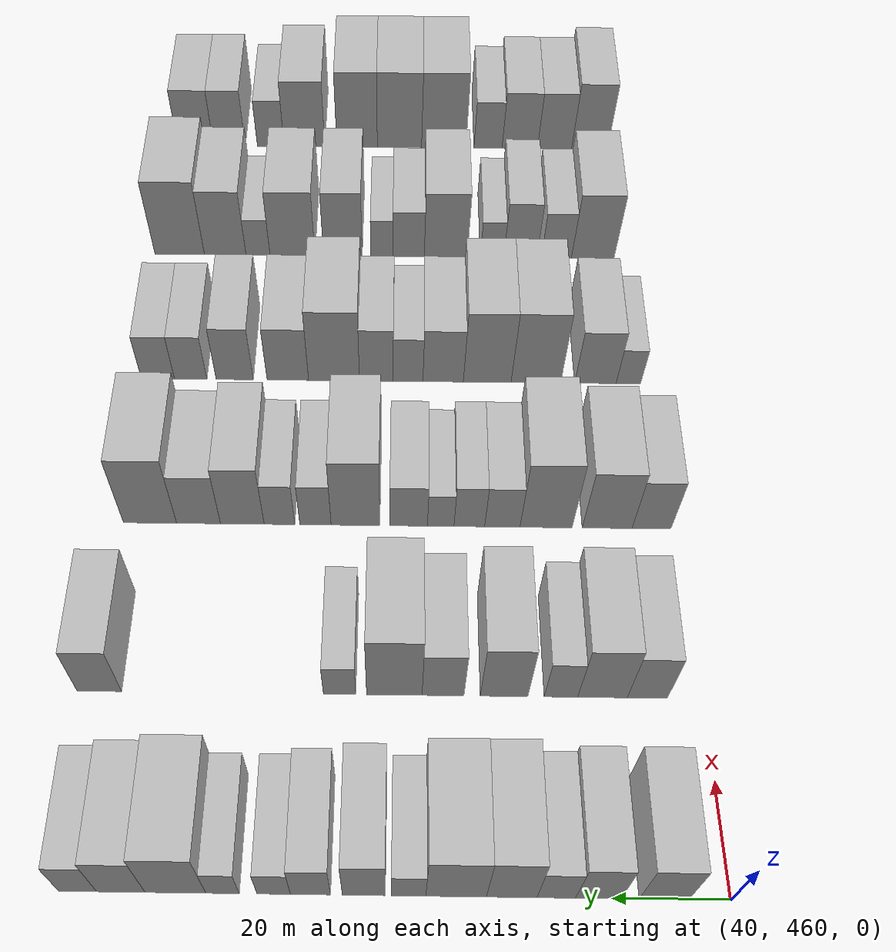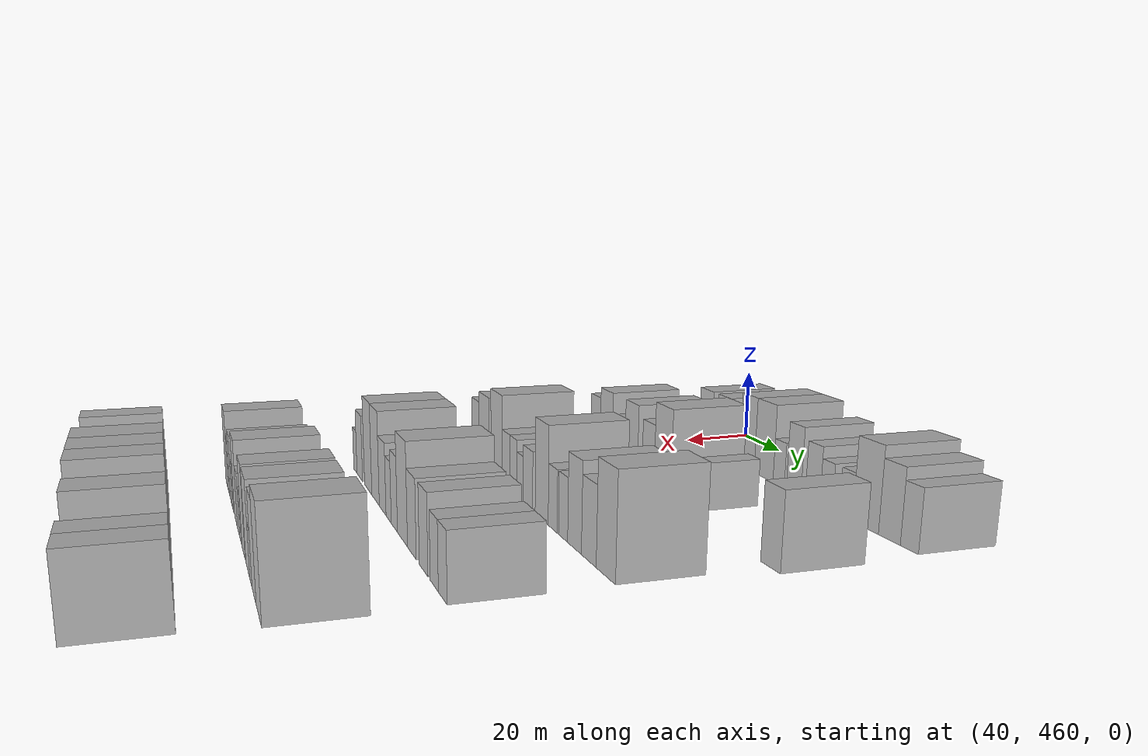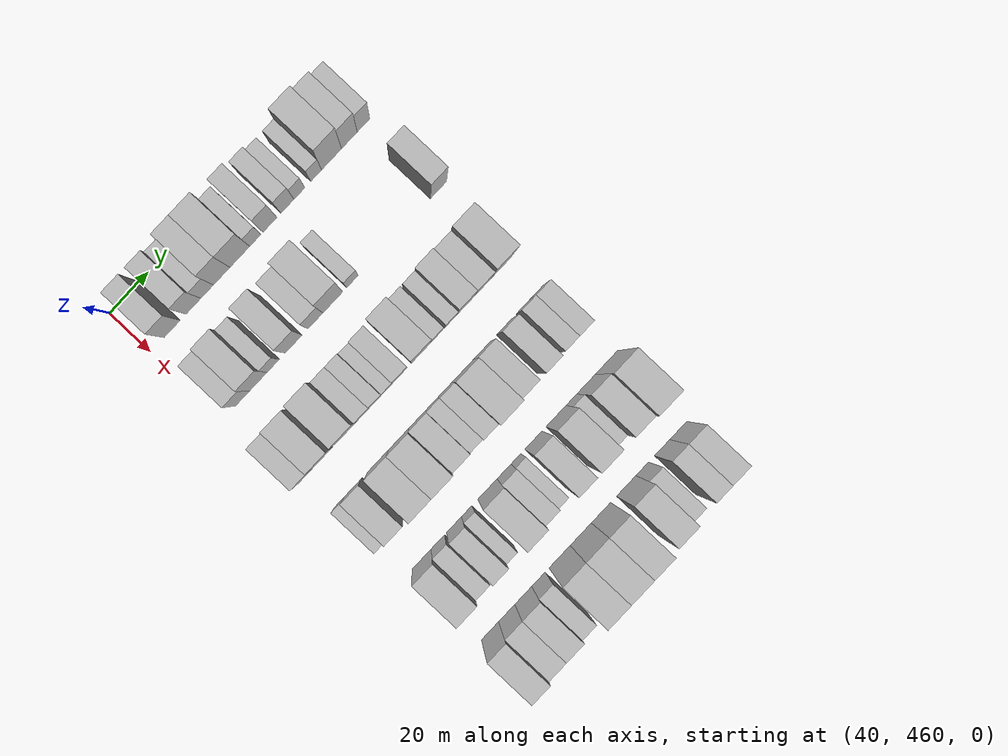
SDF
<sdf version="1.6">
 <world name="default">
  <model name="building_115">
   <static>1</static>
   <pose>50.0000 471.2399 0 0.000000 0.000000 0.000000</pose>
   <link name="link">
    <pose>0 0 9.00 0 0 0</pose>
    <collision name="collision"><geometry><box><size>20.0000 8.3644 18.0000</size></box></geometry></collision>
    <visual name="visual">
     <cast_shadows>0</cast_shadows>
     <geometry><box><size>20.0000 8.3644 18.0000</size></box></geometry>
     <material>
      <script>
       <uri>model://HANNAS_wall/materials/scripts</uri>
       <uri>model://HANNAS_wall/materials/textures</uri>
       <name>vrc/HANNAS_wall</name>
      </script>
     </material>
    </visual>
   </link>
  </model>
  <model name="building_116">
   <static>1</static>
   <pose>50.0000 482.2647 0 0.000000 0.000000 0.000000</pose>
   <link name="link">
    <pose>0 0 9.00 0 0 0</pose>
    <collision name="collision"><geometry><box><size>20.0000 7.6853 18.0000</size></box></geometry></collision>
    <visual name="visual">
     <cast_shadows>0</cast_shadows>
     <geometry><box><size>20.0000 7.6853 18.0000</size></box></geometry>
     <material>
      <script>
       <uri>model://HANNAS_wall/materials/scripts</uri>
       <uri>model://HANNAS_wall/materials/textures</uri>
       <name>vrc/HANNAS_wall</name>
      </script>
     </material>
    </visual>
   </link>
  </model>
  <model name="building_117">
   <static>1</static>
   <pose>50.0000 489.3541 0 0.000000 0.000000 0.000000</pose>
   <link name="link">
    <pose>0 0 7.50 0 0 0</pose>
    <collision name="collision"><geometry><box><size>20.0000 6.4935 15.0000</size></box></geometry></collision>
    <visual name="visual">
     <cast_shadows>0</cast_shadows>
     <geometry><box><size>20.0000 6.4935 15.0000</size></box></geometry>
     <material>
      <script>
       <uri>model://HANNAS_wall/materials/scripts</uri>
       <uri>model://HANNAS_wall/materials/textures</uri>
       <name>vrc/HANNAS_wall</name>
      </script>
     </material>
    </visual>
   </link>
  </model>
  <model name="building_118">
   <static>1</static>
   <pose>50.0000 496.8492 0 0.000000 0.000000 0.000000</pose>
   <link name="link">
    <pose>0 0 10.50 0 0 0</pose>
    <collision name="collision"><geometry><box><size>20.0000 8.4968 21.0000</size></box></geometry></collision>
    <visual name="visual">
     <cast_shadows>0</cast_shadows>
     <geometry><box><size>20.0000 8.4968 21.0000</size></box></geometry>
     <material>
      <script>
       <uri>model://HANNAS_wall/materials/scripts</uri>
       <uri>model://HANNAS_wall/materials/textures</uri>
       <name>vrc/HANNAS_wall</name>
      </script>
     </material>
    </visual>
   </link>
  </model>
  <model name="building_119">
   <static>1</static>
   <pose>50.0000 506.1960 0 0.000000 0.000000 0.000000</pose>
   <link name="link">
    <pose>0 0 10.50 0 0 0</pose>
    <collision name="collision"><geometry><box><size>20.0000 10.1967 21.0000</size></box></geometry></collision>
    <visual name="visual">
     <cast_shadows>0</cast_shadows>
     <geometry><box><size>20.0000 10.1967 21.0000</size></box></geometry>
     <material>
      <script>
       <uri>model://HANNAS_wall/materials/scripts</uri>
       <uri>model://HANNAS_wall/materials/textures</uri>
       <name>vrc/HANNAS_wall</name>
      </script>
     </material>
    </visual>
   </link>
  </model>
  <model name="building_120">
   <static>1</static>
   <pose>50.0000 514.2030 0 0.000000 0.000000 0.000000</pose>
   <link name="link">
    <pose>0 0 6.00 0 0 0</pose>
    <collision name="collision"><geometry><box><size>20.0000 5.8173 12.0000</size></box></geometry></collision>
    <visual name="visual">
     <cast_shadows>0</cast_shadows>
     <geometry><box><size>20.0000 5.8173 12.0000</size></box></geometry>
     <material>
      <script>
       <uri>model://HANNAS_wall/materials/scripts</uri>
       <uri>model://HANNAS_wall/materials/textures</uri>
       <name>vrc/HANNAS_wall</name>
      </script>
     </material>
    </visual>
   </link>
  </model>
  <model name="building_121">
   <static>1</static>
   <pose>50.0000 521.7240 0 0.000000 0.000000 0.000000</pose>
   <link name="link">
    <pose>0 0 9.00 0 0 0</pose>
    <collision name="collision"><geometry><box><size>20.0000 7.2247 18.0000</size></box></geometry></collision>
    <visual name="visual">
     <cast_shadows>0</cast_shadows>
     <geometry><box><size>20.0000 7.2247 18.0000</size></box></geometry>
     <material>
      <script>
       <uri>model://HANNAS_wall/materials/scripts</uri>
       <uri>model://HANNAS_wall/materials/textures</uri>
       <name>vrc/HANNAS_wall</name>
      </script>
     </material>
    </visual>
   </link>
  </model>
  <model name="building_122">
   <static>1</static>
   <pose>50.0000 530.7170 0 0.000000 0.000000 0.000000</pose>
   <link name="link">
    <pose>0 0 7.50 0 0 0</pose>
    <collision name="collision"><geometry><box><size>20.0000 6.7615 15.0000</size></box></geometry></collision>
    <visual name="visual">
     <cast_shadows>0</cast_shadows>
     <geometry><box><size>20.0000 6.7615 15.0000</size></box></geometry>
     <material>
      <script>
       <uri>model://HANNAS_wall/materials/scripts</uri>
       <uri>model://HANNAS_wall/materials/textures</uri>
       <name>vrc/HANNAS_wall</name>
      </script>
     </material>
    </visual>
   </link>
  </model>
  <model name="building_123">
   <static>1</static>
   <pose>50.0000 536.9125 0 0.000000 0.000000 0.000000</pose>
   <link name="link">
    <pose>0 0 6.00 0 0 0</pose>
    <collision name="collision"><geometry><box><size>20.0000 5.6294 12.0000</size></box></geometry></collision>
    <visual name="visual">
     <cast_shadows>0</cast_shadows>
     <geometry><box><size>20.0000 5.6294 12.0000</size></box></geometry>
     <material>
      <script>
       <uri>model://HANNAS_wall/materials/scripts</uri>
       <uri>model://HANNAS_wall/materials/textures</uri>
       <name>vrc/HANNAS_wall</name>
      </script>
     </material>
    </visual>
   </link>
  </model>
  <model name="building_124">
   <static>1</static>
   <pose>50.0000 545.5421 0 0.000000 0.000000 0.000000</pose>
   <link name="link">
    <pose>0 0 6.00 0 0 0</pose>
    <collision name="collision"><geometry><box><size>20.0000 5.6298 12.0000</size></box></geometry></collision>
    <visual name="visual">
     <cast_shadows>0</cast_shadows>
     <geometry><box><size>20.0000 5.6298 12.0000</size></box></geometry>
     <material>
      <script>
       <uri>model://HANNAS_wall/materials/scripts</uri>
       <uri>model://HANNAS_wall/materials/textures</uri>
       <name>vrc/HANNAS_wall</name>
      </script>
     </material>
    </visual>
   </link>
  </model>
  <model name="building_125">
   <static>1</static>
   <pose>50.0000 553.4794 0 0.000000 0.000000 0.000000</pose>
   <link name="link">
    <pose>0 0 10.50 0 0 0</pose>
    <collision name="collision"><geometry><box><size>20.0000 10.2449 21.0000</size></box></geometry></collision>
    <visual name="visual">
     <cast_shadows>0</cast_shadows>
     <geometry><box><size>20.0000 10.2449 21.0000</size></box></geometry>
     <material>
      <script>
       <uri>model://HANNAS_wall/materials/scripts</uri>
       <uri>model://HANNAS_wall/materials/textures</uri>
       <name>vrc/HANNAS_wall</name>
      </script>
     </material>
    </visual>
   </link>
  </model>
  <model name="building_126">
   <static>1</static>
   <pose>50.0000 562.6864 0 0.000000 0.000000 0.000000</pose>
   <link name="link">
    <pose>0 0 9.00 0 0 0</pose>
    <collision name="collision"><geometry><box><size>20.0000 8.1692 18.0000</size></box></geometry></collision>
    <visual name="visual">
     <cast_shadows>0</cast_shadows>
     <geometry><box><size>20.0000 8.1692 18.0000</size></box></geometry>
     <material>
      <script>
       <uri>model://HANNAS_wall/materials/scripts</uri>
       <uri>model://HANNAS_wall/materials/textures</uri>
       <name>vrc/HANNAS_wall</name>
      </script>
     </material>
    </visual>
   </link>
  </model>
  <model name="building_127">
   <static>1</static>
   <pose>50.0000 569.9899 0 0.000000 0.000000 0.000000</pose>
   <link name="link">
    <pose>0 0 7.50 0 0 0</pose>
    <collision name="collision"><geometry><box><size>20.0000 6.4378 15.0000</size></box></geometry></collision>
    <visual name="visual">
     <cast_shadows>0</cast_shadows>
     <geometry><box><size>20.0000 6.4378 15.0000</size></box></geometry>
     <material>
      <script>
       <uri>model://HANNAS_wall/materials/scripts</uri>
       <uri>model://HANNAS_wall/materials/textures</uri>
       <name>vrc/HANNAS_wall</name>
      </script>
     </material>
    </visual>
   </link>
  </model>
  <model name="building_246">
   <static>1</static>
   <pose>85.0000 470.4467 0 0.000000 0.000000 0.000000</pose>
   <link name="link">
    <pose>0 0 9.00 0 0 0</pose>
    <collision name="collision"><geometry><box><size>20.0000 7.3850 18.0000</size></box></geometry></collision>
    <visual name="visual">
     <cast_shadows>0</cast_shadows>
     <geometry><box><size>20.0000 7.3850 18.0000</size></box></geometry>
     <material>
      <script>
       <uri>model://HANNAS_wall/materials/scripts</uri>
       <uri>model://HANNAS_wall/materials/textures</uri>
       <name>vrc/HANNAS_wall</name>
      </script>
     </material>
    </visual>
   </link>
  </model>
  <model name="building_247">
   <static>1</static>
   <pose>85.0000 478.6959 0 0.000000 0.000000 0.000000</pose>
   <link name="link">
    <pose>0 0 10.50 0 0 0</pose>
    <collision name="collision"><geometry><box><size>20.0000 9.1134 21.0000</size></box></geometry></collision>
    <visual name="visual">
     <cast_shadows>0</cast_shadows>
     <geometry><box><size>20.0000 9.1134 21.0000</size></box></geometry>
     <material>
      <script>
       <uri>model://HANNAS_wall/materials/scripts</uri>
       <uri>model://HANNAS_wall/materials/textures</uri>
       <name>vrc/HANNAS_wall</name>
      </script>
     </material>
    </visual>
   </link>
  </model>
  <model name="building_248">
   <static>1</static>
   <pose>85.0000 486.3266 0 0.000000 0.000000 0.000000</pose>
   <link name="link">
    <pose>0 0 7.50 0 0 0</pose>
    <collision name="collision"><geometry><box><size>20.0000 6.1479 15.0000</size></box></geometry></collision>
    <visual name="visual">
     <cast_shadows>0</cast_shadows>
     <geometry><box><size>20.0000 6.1479 15.0000</size></box></geometry>
     <material>
      <script>
       <uri>model://HANNAS_wall/materials/scripts</uri>
       <uri>model://HANNAS_wall/materials/textures</uri>
       <name>vrc/HANNAS_wall</name>
      </script>
     </material>
    </visual>
   </link>
  </model>
  <model name="building_249">
   <static>1</static>
   <pose>85.0000 496.7786 0 0.000000 0.000000 0.000000</pose>
   <link name="link">
    <pose>0 0 10.50 0 0 0</pose>
    <collision name="collision"><geometry><box><size>20.0000 8.7560 21.0000</size></box></geometry></collision>
    <visual name="visual">
     <cast_shadows>0</cast_shadows>
     <geometry><box><size>20.0000 8.7560 21.0000</size></box></geometry>
     <material>
      <script>
       <uri>model://HANNAS_wall/materials/scripts</uri>
       <uri>model://HANNAS_wall/materials/textures</uri>
       <name>vrc/HANNAS_wall</name>
      </script>
     </material>
    </visual>
   </link>
  </model>
  <model name="building_250">
   <static>1</static>
   <pose>85.0000 508.0166 0 0.000000 0.000000 0.000000</pose>
   <link name="link">
    <pose>0 0 9.00 0 0 0</pose>
    <collision name="collision"><geometry><box><size>20.0000 7.7201 18.0000</size></box></geometry></collision>
    <visual name="visual">
     <cast_shadows>0</cast_shadows>
     <geometry><box><size>20.0000 7.7201 18.0000</size></box></geometry>
     <material>
      <script>
       <uri>model://HANNAS_wall/materials/scripts</uri>
       <uri>model://HANNAS_wall/materials/textures</uri>
       <name>vrc/HANNAS_wall</name>
      </script>
     </material>
    </visual>
   </link>
  </model>
  <model name="building_251">
   <static>1</static>
   <pose>85.0000 516.9718 0 0.000000 0.000000 0.000000</pose>
   <link name="link">
    <pose>0 0 12.00 0 0 0</pose>
    <collision name="collision"><geometry><box><size>20.0000 10.1903 24.0000</size></box></geometry></collision>
    <visual name="visual">
     <cast_shadows>0</cast_shadows>
     <geometry><box><size>20.0000 10.1903 24.0000</size></box></geometry>
     <material>
      <script>
       <uri>model://HANNAS_wall/materials/scripts</uri>
       <uri>model://HANNAS_wall/materials/textures</uri>
       <name>vrc/HANNAS_wall</name>
      </script>
     </material>
    </visual>
   </link>
  </model>
  <model name="building_252">
   <static>1</static>
   <pose>85.0000 527.0466 0 0.000000 0.000000 0.000000</pose>
   <link name="link">
    <pose>0 0 6.00 0 0 0</pose>
    <collision name="collision"><geometry><box><size>20.0000 5.9594 12.0000</size></box></geometry></collision>
    <visual name="visual">
     <cast_shadows>0</cast_shadows>
     <geometry><box><size>20.0000 5.9594 12.0000</size></box></geometry>
     <material>
      <script>
       <uri>model://HANNAS_wall/materials/scripts</uri>
       <uri>model://HANNAS_wall/materials/textures</uri>
       <name>vrc/HANNAS_wall</name>
      </script>
     </material>
    </visual>
   </link>
  </model>
  <model name="building_253">
   <static>1</static>
   <pose>85.0000 571.3660 0 0.000000 0.000000 0.000000</pose>
   <link name="link">
    <pose>0 0 9.00 0 0 0</pose>
    <collision name="collision"><geometry><box><size>20.0000 8.2265 18.0000</size></box></geometry></collision>
    <visual name="visual">
     <cast_shadows>0</cast_shadows>
     <geometry><box><size>20.0000 8.2265 18.0000</size></box></geometry>
     <material>
      <script>
       <uri>model://HANNAS_wall/materials/scripts</uri>
       <uri>model://HANNAS_wall/materials/textures</uri>
       <name>vrc/HANNAS_wall</name>
      </script>
     </material>
    </visual>
   </link>
  </model>
  <model name="building_368">
   <static>1</static>
   <pose>120.0000 466.0222 0 0.000000 0.000000 0.000000</pose>
   <link name="link">
    <pose>0 0 9.00 0 0 0</pose>
    <collision name="collision"><geometry><box><size>20.0000 7.7712 18.0000</size></box></geometry></collision>
    <visual name="visual">
     <cast_shadows>0</cast_shadows>
     <geometry><box><size>20.0000 7.7712 18.0000</size></box></geometry>
     <material>
      <script>
       <uri>model://HANNAS_wall/materials/scripts</uri>
       <uri>model://HANNAS_wall/materials/textures</uri>
       <name>vrc/HANNAS_wall</name>
      </script>
     </material>
    </visual>
   </link>
  </model>
  <model name="building_369">
   <static>1</static>
   <pose>120.0000 474.8687 0 0.000000 0.000000 0.000000</pose>
   <link name="link">
    <pose>0 0 10.50 0 0 0</pose>
    <collision name="collision"><geometry><box><size>20.0000 9.9218 21.0000</size></box></geometry></collision>
    <visual name="visual">
     <cast_shadows>0</cast_shadows>
     <geometry><box><size>20.0000 9.9218 21.0000</size></box></geometry>
     <material>
      <script>
       <uri>model://HANNAS_wall/materials/scripts</uri>
       <uri>model://HANNAS_wall/materials/textures</uri>
       <name>vrc/HANNAS_wall</name>
      </script>
     </material>
    </visual>
   </link>
  </model>
  <model name="building_370">
   <static>1</static>
   <pose>120.0000 487.0392 0 0.000000 0.000000 0.000000</pose>
   <link name="link">
    <pose>0 0 12.00 0 0 0</pose>
    <collision name="collision"><geometry><box><size>20.0000 10.4192 24.0000</size></box></geometry></collision>
    <visual name="visual">
     <cast_shadows>0</cast_shadows>
     <geometry><box><size>20.0000 10.4192 24.0000</size></box></geometry>
     <material>
      <script>
       <uri>model://HANNAS_wall/materials/scripts</uri>
       <uri>model://HANNAS_wall/materials/textures</uri>
       <name>vrc/HANNAS_wall</name>
      </script>
     </material>
    </visual>
   </link>
  </model>
  <model name="building_371">
   <static>1</static>
   <pose>120.0000 495.7792 0 0.000000 0.000000 0.000000</pose>
   <link name="link">
    <pose>0 0 7.50 0 0 0</pose>
    <collision name="collision"><geometry><box><size>20.0000 7.0607 15.0000</size></box></geometry></collision>
    <visual name="visual">
     <cast_shadows>0</cast_shadows>
     <geometry><box><size>20.0000 7.0607 15.0000</size></box></geometry>
     <material>
      <script>
       <uri>model://HANNAS_wall/materials/scripts</uri>
       <uri>model://HANNAS_wall/materials/textures</uri>
       <name>vrc/HANNAS_wall</name>
      </script>
     </material>
    </visual>
   </link>
  </model>
  <model name="building_372">
   <static>1</static>
   <pose>120.0000 502.3726 0 0.000000 0.000000 0.000000</pose>
   <link name="link">
    <pose>0 0 7.50 0 0 0</pose>
    <collision name="collision"><geometry><box><size>20.0000 6.1261 15.0000</size></box></geometry></collision>
    <visual name="visual">
     <cast_shadows>0</cast_shadows>
     <geometry><box><size>20.0000 6.1261 15.0000</size></box></geometry>
     <material>
      <script>
       <uri>model://HANNAS_wall/materials/scripts</uri>
       <uri>model://HANNAS_wall/materials/textures</uri>
       <name>vrc/HANNAS_wall</name>
      </script>
     </material>
    </visual>
   </link>
  </model>
  <model name="building_373">
   <static>1</static>
   <pose>120.0000 508.0924 0 0.000000 0.000000 0.000000</pose>
   <link name="link">
    <pose>0 0 6.00 0 0 0</pose>
    <collision name="collision"><geometry><box><size>20.0000 5.3136 12.0000</size></box></geometry></collision>
    <visual name="visual">
     <cast_shadows>0</cast_shadows>
     <geometry><box><size>20.0000 5.3136 12.0000</size></box></geometry>
     <material>
      <script>
       <uri>model://HANNAS_wall/materials/scripts</uri>
       <uri>model://HANNAS_wall/materials/textures</uri>
       <name>vrc/HANNAS_wall</name>
      </script>
     </material>
    </visual>
   </link>
  </model>
  <model name="building_374">
   <static>1</static>
   <pose>120.0000 514.4983 0 0.000000 0.000000 0.000000</pose>
   <link name="link">
    <pose>0 0 7.50 0 0 0</pose>
    <collision name="collision"><geometry><box><size>20.0000 7.4981 15.0000</size></box></geometry></collision>
    <visual name="visual">
     <cast_shadows>0</cast_shadows>
     <geometry><box><size>20.0000 7.4981 15.0000</size></box></geometry>
     <material>
      <script>
       <uri>model://HANNAS_wall/materials/scripts</uri>
       <uri>model://HANNAS_wall/materials/textures</uri>
       <name>vrc/HANNAS_wall</name>
      </script>
     </material>
    </visual>
   </link>
  </model>
  <model name="building_375">
   <static>1</static>
   <pose>120.0000 525.1115 0 0.000000 0.000000 0.000000</pose>
   <link name="link">
    <pose>0 0 12.00 0 0 0</pose>
    <collision name="collision"><geometry><box><size>20.0000 9.7284 24.0000</size></box></geometry></collision>
    <visual name="visual">
     <cast_shadows>0</cast_shadows>
     <geometry><box><size>20.0000 9.7284 24.0000</size></box></geometry>
     <material>
      <script>
       <uri>model://HANNAS_wall/materials/scripts</uri>
       <uri>model://HANNAS_wall/materials/textures</uri>
       <name>vrc/HANNAS_wall</name>
      </script>
     </material>
    </visual>
   </link>
  </model>
  <model name="building_376">
   <static>1</static>
   <pose>120.0000 533.1024 0 0.000000 0.000000 0.000000</pose>
   <link name="link">
    <pose>0 0 7.50 0 0 0</pose>
    <collision name="collision"><geometry><box><size>20.0000 6.2534 15.0000</size></box></geometry></collision>
    <visual name="visual">
     <cast_shadows>0</cast_shadows>
     <geometry><box><size>20.0000 6.2534 15.0000</size></box></geometry>
     <material>
      <script>
       <uri>model://HANNAS_wall/materials/scripts</uri>
       <uri>model://HANNAS_wall/materials/textures</uri>
       <name>vrc/HANNAS_wall</name>
      </script>
     </material>
    </visual>
   </link>
  </model>
  <model name="building_377">
   <static>1</static>
   <pose>120.0000 540.3004 0 0.000000 0.000000 0.000000</pose>
   <link name="link">
    <pose>0 0 7.50 0 0 0</pose>
    <collision name="collision"><geometry><box><size>20.0000 6.1425 15.0000</size></box></geometry></collision>
    <visual name="visual">
     <cast_shadows>0</cast_shadows>
     <geometry><box><size>20.0000 6.1425 15.0000</size></box></geometry>
     <material>
      <script>
       <uri>model://HANNAS_wall/materials/scripts</uri>
       <uri>model://HANNAS_wall/materials/textures</uri>
       <name>vrc/HANNAS_wall</name>
      </script>
     </material>
    </visual>
   </link>
  </model>
  <model name="building_378">
   <static>1</static>
   <pose>120.0000 547.7375 0 0.000000 0.000000 0.000000</pose>
   <link name="link">
    <pose>0 0 10.50 0 0 0</pose>
    <collision name="collision"><geometry><box><size>20.0000 8.7317 21.0000</size></box></geometry></collision>
    <visual name="visual">
     <cast_shadows>0</cast_shadows>
     <geometry><box><size>20.0000 8.7317 21.0000</size></box></geometry>
     <material>
      <script>
       <uri>model://HANNAS_wall/materials/scripts</uri>
       <uri>model://HANNAS_wall/materials/textures</uri>
       <name>vrc/HANNAS_wall</name>
      </script>
     </material>
    </visual>
   </link>
  </model>
  <model name="building_379">
   <static>1</static>
   <pose>120.0000 556.5003 0 0.000000 0.000000 0.000000</pose>
   <link name="link">
    <pose>0 0 9.00 0 0 0</pose>
    <collision name="collision"><geometry><box><size>20.0000 8.7939 18.0000</size></box></geometry></collision>
    <visual name="visual">
     <cast_shadows>0</cast_shadows>
     <geometry><box><size>20.0000 8.7939 18.0000</size></box></geometry>
     <material>
      <script>
       <uri>model://HANNAS_wall/materials/scripts</uri>
       <uri>model://HANNAS_wall/materials/textures</uri>
       <name>vrc/HANNAS_wall</name>
      </script>
     </material>
    </visual>
   </link>
  </model>
  <model name="building_380">
   <static>1</static>
   <pose>120.0000 566.2246 0 0.000000 0.000000 0.000000</pose>
   <link name="link">
    <pose>0 0 12.00 0 0 0</pose>
    <collision name="collision"><geometry><box><size>20.0000 10.6547 24.0000</size></box></geometry></collision>
    <visual name="visual">
     <cast_shadows>0</cast_shadows>
     <geometry><box><size>20.0000 10.6547 24.0000</size></box></geometry>
     <material>
      <script>
       <uri>model://HANNAS_wall/materials/scripts</uri>
       <uri>model://HANNAS_wall/materials/textures</uri>
       <name>vrc/HANNAS_wall</name>
      </script>
     </material>
    </visual>
   </link>
  </model>
  <model name="building_500">
   <static>1</static>
   <pose>155.0000 467.3341 0 0.000000 0.000000 0.000000</pose>
   <link name="link">
    <pose>0 0 6.00 0 0 0</pose>
    <collision name="collision"><geometry><box><size>20.0000 5.2841 12.0000</size></box></geometry></collision>
    <visual name="visual">
     <cast_shadows>0</cast_shadows>
     <geometry><box><size>20.0000 5.2841 12.0000</size></box></geometry>
     <material>
      <script>
       <uri>model://HANNAS_wall/materials/scripts</uri>
       <uri>model://HANNAS_wall/materials/textures</uri>
       <name>vrc/HANNAS_wall</name>
      </script>
     </material>
    </visual>
   </link>
  </model>
  <model name="building_501">
   <static>1</static>
   <pose>155.0000 474.4321 0 0.000000 0.000000 0.000000</pose>
   <link name="link">
    <pose>0 0 9.00 0 0 0</pose>
    <collision name="collision"><geometry><box><size>20.0000 8.9120 18.0000</size></box></geometry></collision>
    <visual name="visual">
     <cast_shadows>0</cast_shadows>
     <geometry><box><size>20.0000 8.9120 18.0000</size></box></geometry>
     <material>
      <script>
       <uri>model://HANNAS_wall/materials/scripts</uri>
       <uri>model://HANNAS_wall/materials/textures</uri>
       <name>vrc/HANNAS_wall</name>
      </script>
     </material>
    </visual>
   </link>
  </model>
  <model name="building_502">
   <static>1</static>
   <pose>155.0000 487.2293 0 0.000000 0.000000 0.000000</pose>
   <link name="link">
    <pose>0 0 12.00 0 0 0</pose>
    <collision name="collision"><geometry><box><size>20.0000 10.6824 24.0000</size></box></geometry></collision>
    <visual name="visual">
     <cast_shadows>0</cast_shadows>
     <geometry><box><size>20.0000 10.6824 24.0000</size></box></geometry>
     <material>
      <script>
       <uri>model://HANNAS_wall/materials/scripts</uri>
       <uri>model://HANNAS_wall/materials/textures</uri>
       <name>vrc/HANNAS_wall</name>
      </script>
     </material>
    </visual>
   </link>
  </model>
  <model name="building_503">
   <static>1</static>
   <pose>155.0000 497.7131 0 0.000000 0.000000 0.000000</pose>
   <link name="link">
    <pose>0 0 12.00 0 0 0</pose>
    <collision name="collision"><geometry><box><size>20.0000 10.2853 24.0000</size></box></geometry></collision>
    <visual name="visual">
     <cast_shadows>0</cast_shadows>
     <geometry><box><size>20.0000 10.2853 24.0000</size></box></geometry>
     <material>
      <script>
       <uri>model://HANNAS_wall/materials/scripts</uri>
       <uri>model://HANNAS_wall/materials/textures</uri>
       <name>vrc/HANNAS_wall</name>
      </script>
     </material>
    </visual>
   </link>
  </model>
  <model name="building_504">
   <static>1</static>
   <pose>155.0000 507.2108 0 0.000000 0.000000 0.000000</pose>
   <link name="link">
    <pose>0 0 9.00 0 0 0</pose>
    <collision name="collision"><geometry><box><size>20.0000 8.7100 18.0000</size></box></geometry></collision>
    <visual name="visual">
     <cast_shadows>0</cast_shadows>
     <geometry><box><size>20.0000 8.7100 18.0000</size></box></geometry>
     <material>
      <script>
       <uri>model://HANNAS_wall/materials/scripts</uri>
       <uri>model://HANNAS_wall/materials/textures</uri>
       <name>vrc/HANNAS_wall</name>
      </script>
     </material>
    </visual>
   </link>
  </model>
  <model name="building_505">
   <static>1</static>
   <pose>155.0000 514.7714 0 0.000000 0.000000 0.000000</pose>
   <link name="link">
    <pose>0 0 7.50 0 0 0</pose>
    <collision name="collision"><geometry><box><size>20.0000 6.4112 15.0000</size></box></geometry></collision>
    <visual name="visual">
     <cast_shadows>0</cast_shadows>
     <geometry><box><size>20.0000 6.4112 15.0000</size></box></geometry>
     <material>
      <script>
       <uri>model://HANNAS_wall/materials/scripts</uri>
       <uri>model://HANNAS_wall/materials/textures</uri>
       <name>vrc/HANNAS_wall</name>
      </script>
     </material>
    </visual>
   </link>
  </model>
  <model name="building_506">
   <static>1</static>
   <pose>155.0000 521.5978 0 0.000000 0.000000 0.000000</pose>
   <link name="link">
    <pose>0 0 9.00 0 0 0</pose>
    <collision name="collision"><geometry><box><size>20.0000 7.2416 18.0000</size></box></geometry></collision>
    <visual name="visual">
     <cast_shadows>0</cast_shadows>
     <geometry><box><size>20.0000 7.2416 18.0000</size></box></geometry>
     <material>
      <script>
       <uri>model://HANNAS_wall/materials/scripts</uri>
       <uri>model://HANNAS_wall/materials/textures</uri>
       <name>vrc/HANNAS_wall</name>
      </script>
     </material>
    </visual>
   </link>
  </model>
  <model name="building_507">
   <static>1</static>
   <pose>155.0000 530.7173 0 0.000000 0.000000 0.000000</pose>
   <link name="link">
    <pose>0 0 12.00 0 0 0</pose>
    <collision name="collision"><geometry><box><size>20.0000 10.9973 24.0000</size></box></geometry></collision>
    <visual name="visual">
     <cast_shadows>0</cast_shadows>
     <geometry><box><size>20.0000 10.9973 24.0000</size></box></geometry>
     <material>
      <script>
       <uri>model://HANNAS_wall/materials/scripts</uri>
       <uri>model://HANNAS_wall/materials/textures</uri>
       <name>vrc/HANNAS_wall</name>
      </script>
     </material>
    </visual>
   </link>
  </model>
  <model name="building_508">
   <static>1</static>
   <pose>155.0000 540.6786 0 0.000000 0.000000 0.000000</pose>
   <link name="link">
    <pose>0 0 9.00 0 0 0</pose>
    <collision name="collision"><geometry><box><size>20.0000 8.9253 18.0000</size></box></geometry></collision>
    <visual name="visual">
     <cast_shadows>0</cast_shadows>
     <geometry><box><size>20.0000 8.9253 18.0000</size></box></geometry>
     <material>
      <script>
       <uri>model://HANNAS_wall/materials/scripts</uri>
       <uri>model://HANNAS_wall/materials/textures</uri>
       <name>vrc/HANNAS_wall</name>
      </script>
     </material>
    </visual>
   </link>
  </model>
  <model name="building_509">
   <static>1</static>
   <pose>155.0000 552.1531 0 0.000000 0.000000 0.000000</pose>
   <link name="link">
    <pose>0 0 9.00 0 0 0</pose>
    <collision name="collision"><geometry><box><size>20.0000 8.0239 18.0000</size></box></geometry></collision>
    <visual name="visual">
     <cast_shadows>0</cast_shadows>
     <geometry><box><size>20.0000 8.0239 18.0000</size></box></geometry>
     <material>
      <script>
       <uri>model://HANNAS_wall/materials/scripts</uri>
       <uri>model://HANNAS_wall/materials/textures</uri>
       <name>vrc/HANNAS_wall</name>
      </script>
     </material>
    </visual>
   </link>
  </model>
  <model name="building_510">
   <static>1</static>
   <pose>155.0000 561.6703 0 0.000000 0.000000 0.000000</pose>
   <link name="link">
    <pose>0 0 7.50 0 0 0</pose>
    <collision name="collision"><geometry><box><size>20.0000 7.0104 15.0000</size></box></geometry></collision>
    <visual name="visual">
     <cast_shadows>0</cast_shadows>
     <geometry><box><size>20.0000 7.0104 15.0000</size></box></geometry>
     <material>
      <script>
       <uri>model://HANNAS_wall/materials/scripts</uri>
       <uri>model://HANNAS_wall/materials/textures</uri>
       <name>vrc/HANNAS_wall</name>
      </script>
     </material>
    </visual>
   </link>
  </model>
  <model name="building_511">
   <static>1</static>
   <pose>155.0000 568.7543 0 0.000000 0.000000 0.000000</pose>
   <link name="link">
    <pose>0 0 7.50 0 0 0</pose>
    <collision name="collision"><geometry><box><size>20.0000 7.1576 15.0000</size></box></geometry></collision>
    <visual name="visual">
     <cast_shadows>0</cast_shadows>
     <geometry><box><size>20.0000 7.1576 15.0000</size></box></geometry>
     <material>
      <script>
       <uri>model://HANNAS_wall/materials/scripts</uri>
       <uri>model://HANNAS_wall/materials/textures</uri>
       <name>vrc/HANNAS_wall</name>
      </script>
     </material>
    </visual>
   </link>
  </model>
  <model name="building_624">
   <static>1</static>
   <pose>190.0000 472.2574 0 0.000000 0.000000 0.000000</pose>
   <link name="link">
    <pose>0 0 10.50 0 0 0</pose>
    <collision name="collision"><geometry><box><size>20.0000 9.8395 21.0000</size></box></geometry></collision>
    <visual name="visual">
     <cast_shadows>0</cast_shadows>
     <geometry><box><size>20.0000 9.8395 21.0000</size></box></geometry>
     <material>
      <script>
       <uri>model://HANNAS_wall/materials/scripts</uri>
       <uri>model://HANNAS_wall/materials/textures</uri>
       <name>vrc/HANNAS_wall</name>
      </script>
     </material>
    </visual>
   </link>
  </model>
  <model name="building_625">
   <static>1</static>
   <pose>190.0000 480.6486 0 0.000000 0.000000 0.000000</pose>
   <link name="link">
    <pose>0 0 7.50 0 0 0</pose>
    <collision name="collision"><geometry><box><size>20.0000 6.9428 15.0000</size></box></geometry></collision>
    <visual name="visual">
     <cast_shadows>0</cast_shadows>
     <geometry><box><size>20.0000 6.9428 15.0000</size></box></geometry>
     <material>
      <script>
       <uri>model://HANNAS_wall/materials/scripts</uri>
       <uri>model://HANNAS_wall/materials/textures</uri>
       <name>vrc/HANNAS_wall</name>
      </script>
     </material>
    </visual>
   </link>
  </model>
  <model name="building_626">
   <static>1</static>
   <pose>190.0000 488.9554 0 0.000000 0.000000 0.000000</pose>
   <link name="link">
    <pose>0 0 9.00 0 0 0</pose>
    <collision name="collision"><geometry><box><size>20.0000 7.6709 18.0000</size></box></geometry></collision>
    <visual name="visual">
     <cast_shadows>0</cast_shadows>
     <geometry><box><size>20.0000 7.6709 18.0000</size></box></geometry>
     <material>
      <script>
       <uri>model://HANNAS_wall/materials/scripts</uri>
       <uri>model://HANNAS_wall/materials/textures</uri>
       <name>vrc/HANNAS_wall</name>
      </script>
     </material>
    </visual>
   </link>
  </model>
  <model name="building_627">
   <static>1</static>
   <pose>190.0000 495.5117 0 0.000000 0.000000 0.000000</pose>
   <link name="link">
    <pose>0 0 6.00 0 0 0</pose>
    <collision name="collision"><geometry><box><size>20.0000 5.4417 12.0000</size></box></geometry></collision>
    <visual name="visual">
     <cast_shadows>0</cast_shadows>
     <geometry><box><size>20.0000 5.4417 12.0000</size></box></geometry>
     <material>
      <script>
       <uri>model://HANNAS_wall/materials/scripts</uri>
       <uri>model://HANNAS_wall/materials/textures</uri>
       <name>vrc/HANNAS_wall</name>
      </script>
     </material>
    </visual>
   </link>
  </model>
  <model name="building_628">
   <static>1</static>
   <pose>190.0000 506.2098 0 0.000000 0.000000 0.000000</pose>
   <link name="link">
    <pose>0 0 10.50 0 0 0</pose>
    <collision name="collision"><geometry><box><size>20.0000 9.9545 21.0000</size></box></geometry></collision>
    <visual name="visual">
     <cast_shadows>0</cast_shadows>
     <geometry><box><size>20.0000 9.9545 21.0000</size></box></geometry>
     <material>
      <script>
       <uri>model://HANNAS_wall/materials/scripts</uri>
       <uri>model://HANNAS_wall/materials/textures</uri>
       <name>vrc/HANNAS_wall</name>
      </script>
     </material>
    </visual>
   </link>
  </model>
  <model name="building_629">
   <static>1</static>
   <pose>190.0000 514.8160 0 0.000000 0.000000 0.000000</pose>
   <link name="link">
    <pose>0 0 7.50 0 0 0</pose>
    <collision name="collision"><geometry><box><size>20.0000 7.2579 15.0000</size></box></geometry></collision>
    <visual name="visual">
     <cast_shadows>0</cast_shadows>
     <geometry><box><size>20.0000 7.2579 15.0000</size></box></geometry>
     <material>
      <script>
       <uri>model://HANNAS_wall/materials/scripts</uri>
       <uri>model://HANNAS_wall/materials/textures</uri>
       <name>vrc/HANNAS_wall</name>
      </script>
     </material>
    </visual>
   </link>
  </model>
  <model name="building_630">
   <static>1</static>
   <pose>190.0000 520.9857 0 0.000000 0.000000 0.000000</pose>
   <link name="link">
    <pose>0 0 6.00 0 0 0</pose>
    <collision name="collision"><geometry><box><size>20.0000 5.0815 12.0000</size></box></geometry></collision>
    <visual name="visual">
     <cast_shadows>0</cast_shadows>
     <geometry><box><size>20.0000 5.0815 12.0000</size></box></geometry>
     <material>
      <script>
       <uri>model://HANNAS_wall/materials/scripts</uri>
       <uri>model://HANNAS_wall/materials/textures</uri>
       <name>vrc/HANNAS_wall</name>
      </script>
     </material>
    </visual>
   </link>
  </model>
  <model name="building_631">
   <static>1</static>
   <pose>190.0000 529.9929 0 0.000000 0.000000 0.000000</pose>
   <link name="link">
    <pose>0 0 10.50 0 0 0</pose>
    <collision name="collision"><geometry><box><size>20.0000 8.9330 21.0000</size></box></geometry></collision>
    <visual name="visual">
     <cast_shadows>0</cast_shadows>
     <geometry><box><size>20.0000 8.9330 21.0000</size></box></geometry>
     <material>
      <script>
       <uri>model://HANNAS_wall/materials/scripts</uri>
       <uri>model://HANNAS_wall/materials/textures</uri>
       <name>vrc/HANNAS_wall</name>
      </script>
     </material>
    </visual>
   </link>
  </model>
  <model name="building_632">
   <static>1</static>
   <pose>190.0000 541.6651 0 0.000000 0.000000 0.000000</pose>
   <link name="link">
    <pose>0 0 10.50 0 0 0</pose>
    <collision name="collision"><geometry><box><size>20.0000 10.4113 21.0000</size></box></geometry></collision>
    <visual name="visual">
     <cast_shadows>0</cast_shadows>
     <geometry><box><size>20.0000 10.4113 21.0000</size></box></geometry>
     <material>
      <script>
       <uri>model://HANNAS_wall/materials/scripts</uri>
       <uri>model://HANNAS_wall/materials/textures</uri>
       <name>vrc/HANNAS_wall</name>
      </script>
     </material>
    </visual>
   </link>
  </model>
  <model name="building_633">
   <static>1</static>
   <pose>190.0000 549.6591 0 0.000000 0.000000 0.000000</pose>
   <link name="link">
    <pose>0 0 6.00 0 0 0</pose>
    <collision name="collision"><geometry><box><size>20.0000 5.5768 12.0000</size></box></geometry></collision>
    <visual name="visual">
     <cast_shadows>0</cast_shadows>
     <geometry><box><size>20.0000 5.5768 12.0000</size></box></geometry>
     <material>
      <script>
       <uri>model://HANNAS_wall/materials/scripts</uri>
       <uri>model://HANNAS_wall/materials/textures</uri>
       <name>vrc/HANNAS_wall</name>
      </script>
     </material>
    </visual>
   </link>
  </model>
  <model name="building_634">
   <static>1</static>
   <pose>190.0000 557.2613 0 0.000000 0.000000 0.000000</pose>
   <link name="link">
    <pose>0 0 10.50 0 0 0</pose>
    <collision name="collision"><geometry><box><size>20.0000 9.6276 21.0000</size></box></geometry></collision>
    <visual name="visual">
     <cast_shadows>0</cast_shadows>
     <geometry><box><size>20.0000 9.6276 21.0000</size></box></geometry>
     <material>
      <script>
       <uri>model://HANNAS_wall/materials/scripts</uri>
       <uri>model://HANNAS_wall/materials/textures</uri>
       <name>vrc/HANNAS_wall</name>
      </script>
     </material>
    </visual>
   </link>
  </model>
  <model name="building_635">
   <static>1</static>
   <pose>190.0000 567.8020 0 0.000000 0.000000 0.000000</pose>
   <link name="link">
    <pose>0 0 12.00 0 0 0</pose>
    <collision name="collision"><geometry><box><size>20.0000 11.4537 24.0000</size></box></geometry></collision>
    <visual name="visual">
     <cast_shadows>0</cast_shadows>
     <geometry><box><size>20.0000 11.4537 24.0000</size></box></geometry>
     <material>
      <script>
       <uri>model://HANNAS_wall/materials/scripts</uri>
       <uri>model://HANNAS_wall/materials/textures</uri>
       <name>vrc/HANNAS_wall</name>
      </script>
     </material>
    </visual>
   </link>
  </model>
  <model name="building_752">
   <static>1</static>
   <pose>225.0000 470.3077 0 0.000000 0.000000 0.000000</pose>
   <link name="link">
    <pose>0 0 10.50 0 0 0</pose>
    <collision name="collision"><geometry><box><size>20.0000 8.8667 21.0000</size></box></geometry></collision>
    <visual name="visual">
     <cast_shadows>0</cast_shadows>
     <geometry><box><size>20.0000 8.8667 21.0000</size></box></geometry>
     <material>
      <script>
       <uri>model://HANNAS_wall/materials/scripts</uri>
       <uri>model://HANNAS_wall/materials/textures</uri>
       <name>vrc/HANNAS_wall</name>
      </script>
     </material>
    </visual>
   </link>
  </model>
  <model name="building_753">
   <static>1</static>
   <pose>225.0000 478.9474 0 0.000000 0.000000 0.000000</pose>
   <link name="link">
    <pose>0 0 9.00 0 0 0</pose>
    <collision name="collision"><geometry><box><size>20.0000 8.4127 18.0000</size></box></geometry></collision>
    <visual name="visual">
     <cast_shadows>0</cast_shadows>
     <geometry><box><size>20.0000 8.4127 18.0000</size></box></geometry>
     <material>
      <script>
       <uri>model://HANNAS_wall/materials/scripts</uri>
       <uri>model://HANNAS_wall/materials/textures</uri>
       <name>vrc/HANNAS_wall</name>
      </script>
     </material>
    </visual>
   </link>
  </model>
  <model name="building_754">
   <static>1</static>
   <pose>225.0000 487.5190 0 0.000000 0.000000 0.000000</pose>
   <link name="link">
    <pose>0 0 9.00 0 0 0</pose>
    <collision name="collision"><geometry><box><size>20.0000 8.7307 18.0000</size></box></geometry></collision>
    <visual name="visual">
     <cast_shadows>0</cast_shadows>
     <geometry><box><size>20.0000 8.7307 18.0000</size></box></geometry>
     <material>
      <script>
       <uri>model://HANNAS_wall/materials/scripts</uri>
       <uri>model://HANNAS_wall/materials/textures</uri>
       <name>vrc/HANNAS_wall</name>
      </script>
     </material>
    </visual>
   </link>
  </model>
  <model name="building_755">
   <static>1</static>
   <pose>225.0000 495.3485 0 0.000000 0.000000 0.000000</pose>
   <link name="link">
    <pose>0 0 7.50 0 0 0</pose>
    <collision name="collision"><geometry><box><size>20.0000 6.9282 15.0000</size></box></geometry></collision>
    <visual name="visual">
     <cast_shadows>0</cast_shadows>
     <geometry><box><size>20.0000 6.9282 15.0000</size></box></geometry>
     <material>
      <script>
       <uri>model://HANNAS_wall/materials/scripts</uri>
       <uri>model://HANNAS_wall/materials/textures</uri>
       <name>vrc/HANNAS_wall</name>
      </script>
     </material>
    </visual>
   </link>
  </model>
  <model name="building_756">
   <static>1</static>
   <pose>225.0000 506.2833 0 0.000000 0.000000 0.000000</pose>
   <link name="link">
    <pose>0 0 12.00 0 0 0</pose>
    <collision name="collision"><geometry><box><size>20.0000 10.9413 24.0000</size></box></geometry></collision>
    <visual name="visual">
     <cast_shadows>0</cast_shadows>
     <geometry><box><size>20.0000 10.9413 24.0000</size></box></geometry>
     <material>
      <script>
       <uri>model://HANNAS_wall/materials/scripts</uri>
       <uri>model://HANNAS_wall/materials/textures</uri>
       <name>vrc/HANNAS_wall</name>
      </script>
     </material>
    </visual>
   </link>
  </model>
  <model name="building_757">
   <static>1</static>
   <pose>225.0000 517.2141 0 0.000000 0.000000 0.000000</pose>
   <link name="link">
    <pose>0 0 12.00 0 0 0</pose>
    <collision name="collision"><geometry><box><size>20.0000 10.9204 24.0000</size></box></geometry></collision>
    <visual name="visual">
     <cast_shadows>0</cast_shadows>
     <geometry><box><size>20.0000 10.9204 24.0000</size></box></geometry>
     <material>
      <script>
       <uri>model://HANNAS_wall/materials/scripts</uri>
       <uri>model://HANNAS_wall/materials/textures</uri>
       <name>vrc/HANNAS_wall</name>
      </script>
     </material>
    </visual>
   </link>
  </model>
  <model name="building_758">
   <static>1</static>
   <pose>225.0000 527.6654 0 0.000000 0.000000 0.000000</pose>
   <link name="link">
    <pose>0 0 12.00 0 0 0</pose>
    <collision name="collision"><geometry><box><size>20.0000 9.9821 24.0000</size></box></geometry></collision>
    <visual name="visual">
     <cast_shadows>0</cast_shadows>
     <geometry><box><size>20.0000 9.9821 24.0000</size></box></geometry>
     <material>
      <script>
       <uri>model://HANNAS_wall/materials/scripts</uri>
       <uri>model://HANNAS_wall/materials/textures</uri>
       <name>vrc/HANNAS_wall</name>
      </script>
     </material>
    </visual>
   </link>
  </model>
  <model name="building_759">
   <static>1</static>
   <pose>225.0000 540.6804 0 0.000000 0.000000 0.000000</pose>
   <link name="link">
    <pose>0 0 10.50 0 0 0</pose>
    <collision name="collision"><geometry><box><size>20.0000 10.0478 21.0000</size></box></geometry></collision>
    <visual name="visual">
     <cast_shadows>0</cast_shadows>
     <geometry><box><size>20.0000 10.0478 21.0000</size></box></geometry>
     <material>
      <script>
       <uri>model://HANNAS_wall/materials/scripts</uri>
       <uri>model://HANNAS_wall/materials/textures</uri>
       <name>vrc/HANNAS_wall</name>
      </script>
     </material>
    </visual>
   </link>
  </model>
  <model name="building_760">
   <static>1</static>
   <pose>225.0000 549.0062 0 0.000000 0.000000 0.000000</pose>
   <link name="link">
    <pose>0 0 7.50 0 0 0</pose>
    <collision name="collision"><geometry><box><size>20.0000 6.6039 15.0000</size></box></geometry></collision>
    <visual name="visual">
     <cast_shadows>0</cast_shadows>
     <geometry><box><size>20.0000 6.6039 15.0000</size></box></geometry>
     <material>
      <script>
       <uri>model://HANNAS_wall/materials/scripts</uri>
       <uri>model://HANNAS_wall/materials/textures</uri>
       <name>vrc/HANNAS_wall</name>
      </script>
     </material>
    </visual>
   </link>
  </model>
  <model name="building_761">
   <static>1</static>
   <pose>225.0000 559.2571 0 0.000000 0.000000 0.000000</pose>
   <link name="link">
    <pose>0 0 9.00 0 0 0</pose>
    <collision name="collision"><geometry><box><size>20.0000 7.8978 18.0000</size></box></geometry></collision>
    <visual name="visual">
     <cast_shadows>0</cast_shadows>
     <geometry><box><size>20.0000 7.8978 18.0000</size></box></geometry>
     <material>
      <script>
       <uri>model://HANNAS_wall/materials/scripts</uri>
       <uri>model://HANNAS_wall/materials/textures</uri>
       <name>vrc/HANNAS_wall</name>
      </script>
     </material>
    </visual>
   </link>
  </model>
  <model name="building_762">
   <static>1</static>
   <pose>225.0000 567.6157 0 0.000000 0.000000 0.000000</pose>
   <link name="link">
    <pose>0 0 9.00 0 0 0</pose>
    <collision name="collision"><geometry><box><size>20.0000 8.8195 18.0000</size></box></geometry></collision>
    <visual name="visual">
     <cast_shadows>0</cast_shadows>
     <geometry><box><size>20.0000 8.8195 18.0000</size></box></geometry>
     <material>
      <script>
       <uri>model://HANNAS_wall/materials/scripts</uri>
       <uri>model://HANNAS_wall/materials/textures</uri>
       <name>vrc/HANNAS_wall</name>
      </script>
     </material>
    </visual>
   </link>
  </model>
 </world>
</sdf>
